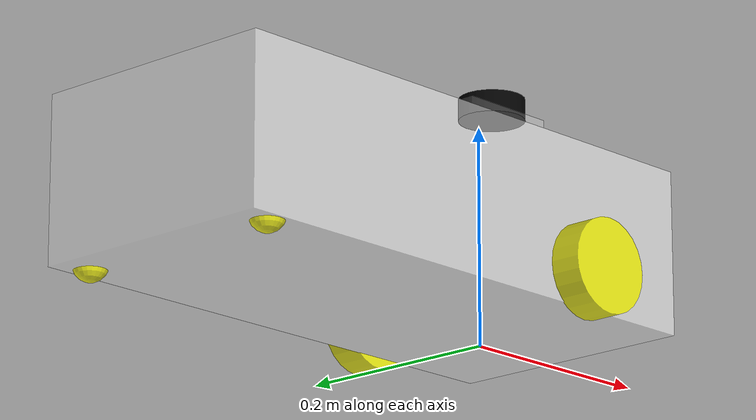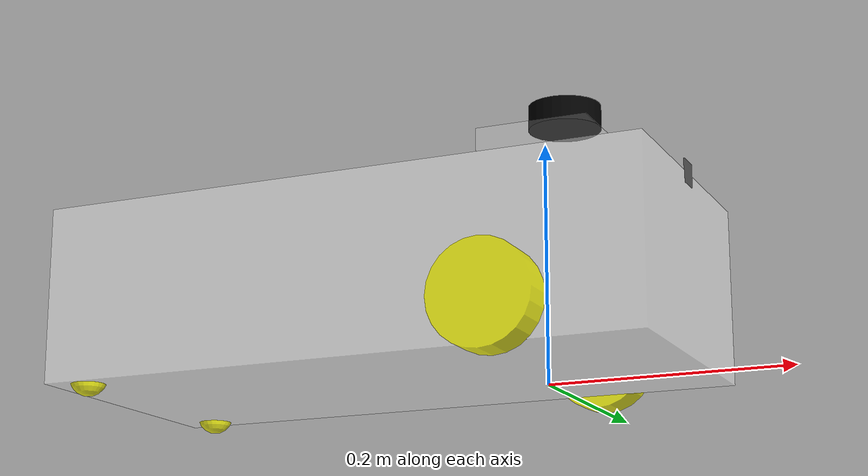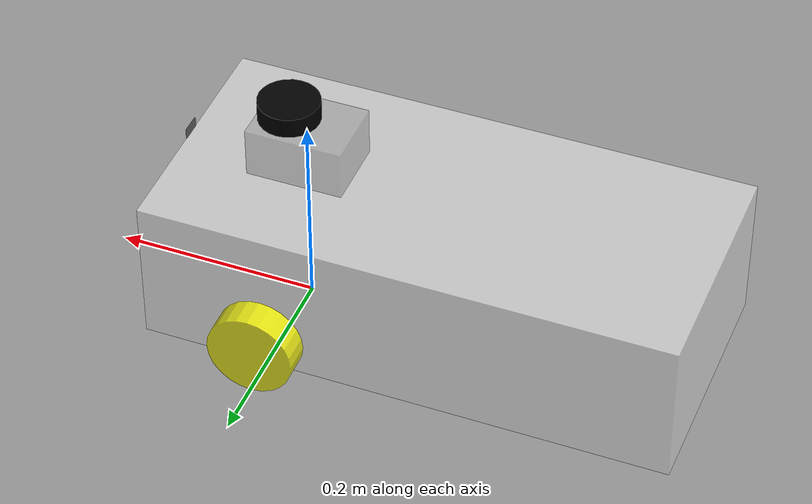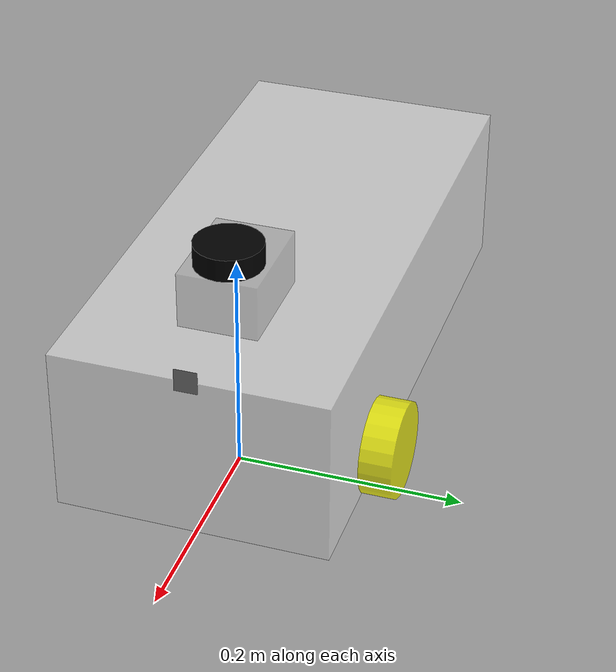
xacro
<?xml version="1.0"?>
<robot xmlns:xacro="http://www.ros.org/wiki/xacro" name="TennisRobot">

    <xacro:include filename="$(find robot_description)/urdf/TennisRobot/base.urdf.xacro"/>

    <xacro:include filename="$(find robot_description)/urdf/TennisRobot/sensor/imu.urdf.xacro"/>
    <xacro:include filename="$(find robot_description)/urdf/TennisRobot/sensor/camera.urdf.xacro"/>
    <xacro:include filename="$(find robot_description)/urdf/TennisRobot/sensor/laser.urdf.xacro"/>

    <xacro:include filename="$(find robot_description)/urdf/TennisRobot/actuator/wheel.urdf.xacro"/>
    <xacro:include filename="$(find robot_description)/urdf/TennisRobot/actuator/caster.urdf.xacro"/>

    <xacro:base_xacro />

    <xacro:imu_xacro xyz="00.14 0 0.075"/>
    <xacro:camera_xacro xyz="0.26 0 0.075"/>
    <xacro:laser_xacro xyz="0.14 0 0.095"/>

    <xacro:wheel_xacro wheel_name= "left_wheel" xyz="0.14 0.134 -0.0425"/>
    <xacro:wheel_xacro wheel_name= "right_wheel" xyz="0.14 -0.134 -0.0425"/>
    <xacro:caster_xacro caster_name= "left_caster" xyz="-0.228 0.103 -0.069"/>
    <xacro:caster_xacro caster_name= "right_caster" xyz="-0.228 -0.103 -0.069"/>

</robot>

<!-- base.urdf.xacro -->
<robot xmlns:xacro="http://www.ros.org/wiki/xacro">
    <xacro:include filename="$(find robot_description)/urdf/TennisRobot/common_inertial.xacro"/>
    <xacro:macro name="base_xacro">
        <link name="base_footprint" />

        <link name="base_link">
            <visual>
                <origin xyz="0.0 0.0 0.0" rpy="0.0 0.0 3.14159"/>
                <geometry>
                    <box size="0.52 0.24 0.15"/>
                </geometry>
                <material name="white">
                    <color rgba="1.0 1.0 1.0 0.5"/>
                </material>
            </visual>
            <collision>
                <origin xyz="0.0 0.0 0.0" rpy="0.0 0.0 3.14159"/>
                <geometry>
                    <box size="0.52 0.24 0.15"/>
                </geometry>
                <material name="white">
                    <color rgba="1.0 1.0 1.0 0.5"/>
                </material>
            </collision>
            <xacro:box_inertial m="1.0" d="0.52" w="0.24" h="0.15" />
        </link>

        <joint name="base_footprint_to_base_link" type="fixed">
            <parent link="base_footprint"/>
            <child link="base_link"/>
            <origin xyz="-0.14 0.0 0.086" rpy="0.0 0.0 0.0"/>
        </joint>

    </xacro:macro>

</robot>

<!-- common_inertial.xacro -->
<robot xmlns:xacro="http://www.ros.org/wiki/xacro">
    <xacro:macro name="box_inertial" params="m w h d">
        <inertial>
            <mass value="${m}" />
            <inertia ixx="${(m/12)*(h*h + d*d)}" ixy="0.0" ixz="0.0"
                      iyy="${(m/12)*(w*w + d*d)}" iyz="0.0"
                      izz="${(m/12)*(w*w + h*h)}"/>
        </inertial>
    </xacro:macro>

    <xacro:macro name="cylinder_inertial" params="m r h">
        <inertial>
            <mass value="${m}" />
            <inertia ixx="${(m/12)*(3*r*r + h*h)}" ixy="0.0" ixz="0.0"
                      iyy="${(m/12)*(3*r*r + h*h)}" iyz="0.0"
                      izz="${(m/2)*r*r}"/>
        </inertial>
    </xacro:macro>

    <xacro:macro name="sphere_inertial" params="m r">
        <inertial>
            <mass value="${m}" />
            <inertia ixx="${(2/5)*m*r*r}" ixy="0.0" ixz="0.0"
                      iyy="${(2/5)*m*r*r}" iyz="0.0"
                      izz="${(2/5)*m*r*r}"/>
        </inertial>
    </xacro:macro>

</robot>

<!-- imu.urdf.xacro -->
<robot xmlns:xacro="http://www.ros.org/wiki/xacro">
    <xacro:include filename="$(find robot_description)/urdf/TennisRobot/common_inertial.xacro"/>
    <xacro:macro name="imu_xacro" params="xyz">
        <link name="imu_link">
            <visual>
                <origin xyz="0.0 0.0 0.0" rpy="0.0 0.0 0.0"/>
                <geometry>
                    <box size="0.02 0.02 0.02"/>
                </geometry>
                <material name="black">
                    <color rgba="0.0 0.0 0.0 0.5"/>
                </material>
            </visual>
            <collision>
                <origin xyz="0.0 0.0 0.0" rpy="0.0 0.0 0.0"/>
                <geometry>
                    <box size="0.02 0.02 0.02"/>
                </geometry>
                <material name="black">
                    <color rgba="0.0 0.0 0.0 0.5"/>
                </material>
            </collision>
            <xacro:box_inertial m="0.1" d="0.02" w="0.02" h="0.02" />
        </link>

        <joint name="imu_joint" type="fixed">
            <origin xyz="${xyz}" rpy="0.0 0.0 0.0"/>
            <parent link="base_link"/>
            <child link="imu_link"/>
        </joint>
    </xacro:macro>

</robot>

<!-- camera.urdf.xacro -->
<robot xmlns:xacro="http://www.ros.org/wiki/xacro">
    <xacro:include filename="$(find robot_description)/urdf/TennisRobot/common_inertial.xacro"/>
    <xacro:macro name="camera_xacro" params="xyz">
        <link name="camera_link">
            <visual>
                <origin xyz="0.0 0.0 0.0" rpy="0.0 0.0 0.0"/>
                <geometry>
                    <box size="0.001 0.02 0.02"/>
                </geometry>
                <material name="black">
                    <color rgba="0.0 0.0 0.0 0.5"/>
                </material>
            </visual>
            <collision>
                <origin xyz="0.0 0.0 0.0" rpy="0.0 0.0 0.0"/>
                <geometry>
                    <box size="0.001 0.02 0.02"/>
                </geometry>
                <material name="black">
                    <color rgba="0.0 0.0 0.0 0.5"/>
                </material>
            </collision>
            <xacro:box_inertial m="0.1" d="0.001" w="0.02" h="0.02" />
        </link>

        <joint name="camera_joint" type="fixed">
            <origin xyz="${xyz}" rpy="0.0 0.0 0.0"/>
            <parent link="base_link"/>
            <child link="camera_link"/>
        </joint>
    </xacro:macro>

</robot>

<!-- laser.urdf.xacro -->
<robot xmlns:xacro="http://www.ros.org/wiki/xacro">
    <xacro:include filename="$(find robot_description)/urdf/TennisRobot/common_inertial.xacro"/>
    <xacro:macro name="laser_xacro" params="xyz">
        <link name="laser_base_link">
            <visual>
                <origin xyz="0.0 0.0 0.0" rpy="0.0 0.0 0.0"/>
                <geometry>
                    <box size="0.095 0.07 0.06"/>
                </geometry>
                <material name="while">
                    <color rgba="1.0 1.0 1.0 0.2"/>
                </material>
            </visual>
            <collision>
                <origin xyz="0.0 0.0 0.0" rpy="0.0 0.0 0.0"/>
                <geometry>
                    <box size="0.095 0.07 0.06"/>
                </geometry>
                <material name="while">
                    <color rgba="1.0 1.0 1.0 0.2"/>
                </material>
            </collision>
            <xacro:box_inertial m="0.5" d="0.095" w="0.07" h="0.06" />
        </link>

        <link name="laser_link">
            <visual>
                <origin xyz="0.0 0.0 0.0" rpy="0.0 0.0 0.0"/>
                <geometry>
                    <cylinder radius="0.03" length="0.02"/>
                </geometry>
                <material name="black">
                    <color rgba="0.0 0.0 0.0 1.0"/>
                </material>
            </visual>
            <collision>
                <origin xyz="0.0 0.0 0.0" rpy="0.0 0.0 0.0"/>
                <geometry>
                    <cylinder radius="0.03" length="0.02"/>
                </geometry>
                <material name="black">
                    <color rgba="0.0 0.0 0.0 1.0"/>
                </material>
            </collision>
            <xacro:cylinder_inertial m="0.05" r="0.03" h="0.02" />
        </link>

        <joint name="laser_joint" type="fixed">
            <origin xyz="0.0175 0.0 0.04" rpy="0.0 0.0 0.0"/>
            <parent link="laser_base_link"/>
            <child link="laser_link"/>
        </joint>

        <joint name="laser_base_joint" type="fixed">
            <origin xyz="${xyz}" rpy="0.0 0.0 0.0"/>
            <parent link="base_link"/>
            <child link="laser_base_link"/>
        </joint>

    </xacro:macro>

</robot>

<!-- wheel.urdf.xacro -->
<robot xmlns:xacro="http://www.ros.org/wiki/xacro">
    <xacro:include filename="$(find robot_description)/urdf/TennisRobot/common_inertial.xacro"/>
    <xacro:macro name="wheel_xacro" params="wheel_name xyz">
        <link name="${wheel_name}_link">
            <visual>
                <origin xyz="0.0 0.0 0.0" rpy="1.57079 0.0 0.0"/>
                <geometry>
                    <cylinder radius="0.0425" length="0.03"/>
                </geometry>
                <material name="yellow">
                    <color rgba="1.0 1.0 0.0 0.8"/>
                </material>
            </visual>
            <collision>
                <origin xyz="0.0 0.0 0.0" rpy="1.57079 0.0 0.0"/>
                <geometry>
                    <cylinder radius="0.0425" length="0.03"/>
                </geometry>
                <material name="yellow">
                    <color rgba="1.0 1.0 0.0 0.8"/>
                </material>
            </collision>
            <xacro:cylinder_inertial m="0.05" r="0.0425" h="0.03" />
        </link>

        <joint name="${wheel_name}_joint" type="continuous">
            <origin xyz="${xyz}" rpy="0.0 0.0 0.0"/>
            <parent link="base_link"/>
            <child link="${wheel_name}_link"/>
            <axis xyz="0 1 0"/>
        </joint>

    </xacro:macro>

</robot>

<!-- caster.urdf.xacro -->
<robot xmlns:xacro="http://www.ros.org/wiki/xacro">
    <xacro:include filename="$(find robot_description)/urdf/TennisRobot/common_inertial.xacro"/>
    <xacro:macro name="caster_xacro" params="caster_name xyz">
        <link name="${caster_name}_link">
            <visual>
                <origin xyz="0.0 0.0 0.0" rpy="0.0 0.0 0.0"/>
                <geometry>
                    <sphere radius="0.016"/>
                </geometry>
                <material name="yellow">
                    <color rgba="1.0 1.0 0.0 0.8"/>
                </material>
            </visual>
            <collision>
                <origin xyz="0.0 0.0 0.0" rpy="0.0 0.0 0.0"/>
                <geometry>
                    <sphere radius="0.016"/>
                </geometry>
                <material name="yellow">
                    <color rgba="1.0 1.0 0.0 0.8"/>
                </material>
            </collision>
            <xacro:sphere_inertial m="0.05" r="0.016" />
        </link>

        <joint name="${caster_name}_joint" type="fixed">
            <origin xyz="${xyz}" rpy="0.0 0.0 0.0"/>
            <parent link="base_link"/>
            <child link="${caster_name}_link"/>
        </joint>

        <gazebo reference="${caster_name}_link">
            <mu1 value="0.0"/>
            <mu2 value="0.0"/>
            <kp value="100000000.0"/>
            <kd value="1.0"/>
        </gazebo>
    </xacro:macro>

</robot>
